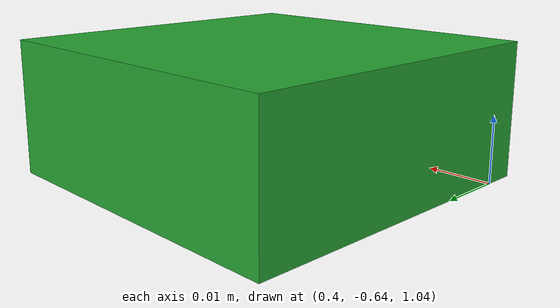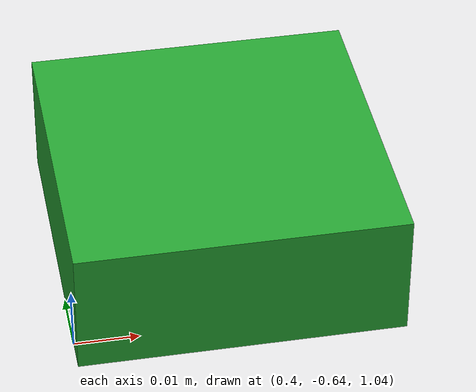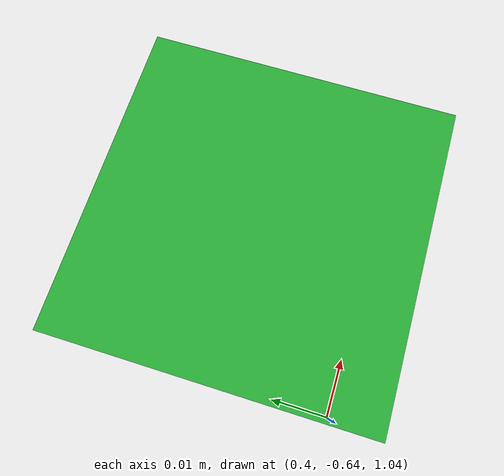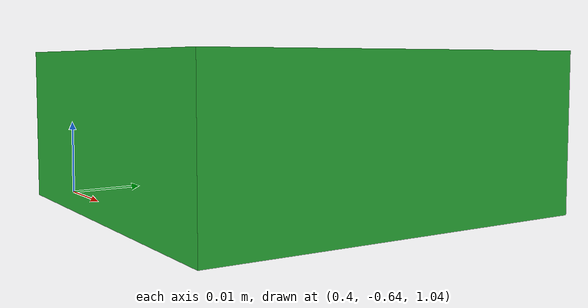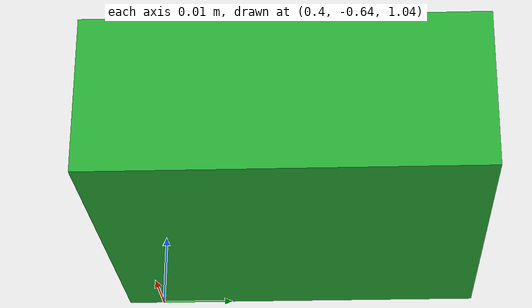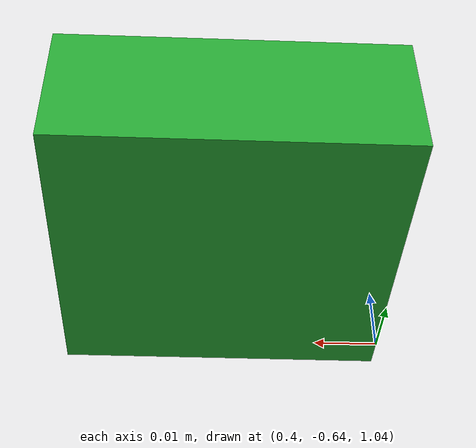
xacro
<?xml version="1.0"?>
<robot xmlns:xacro="http://www.ros.org/wiki/xacro" name="camera_frames">

  <xacro:arg name="robot_name" default=""/>
  <xacro:arg name="tf_prefix" default=""/>

  <link name="$(arg tf_prefix)/base_link" />

  <!--GNSS-->
  <link name="$(arg tf_prefix)/camera">
  <visual>
      <geometry>
        <box size="0.05 0.05 0.02"/>
      </geometry>
      <material name="green"/>
    </visual>
  </link>

  <joint name="center_to_gps" type="fixed">
    <parent link="$(arg tf_prefix)/base_link"/>
    <child link="$(arg tf_prefix)/camera"/>
    <origin xyz="0.425 -0.62 1.05"/>
  </joint>

</robot>
